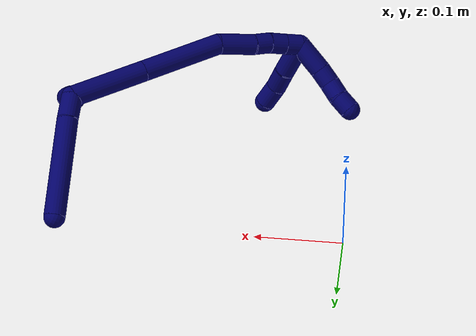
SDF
<sdf version="1.7">
 <world name="default">
  <model name="7">
   <static>0</static>
   <link name="7">
    <collision name="collision-cylinder-e_1_2_8">
     <pose>0.010526 0.010833 -0.000975 -1.66057 0.768999 -0.833534</pose>
     <geometry><cylinder><radius>0.0125</radius><length>0.030271</length></cylinder></geometry>
     <surface>
      <friction><ode><mu>1.16</mu><mu2>1.16</mu2><slip1>0</slip1><slip2>0</slip2></ode></friction>
      <contact><ode><kp>1e+06</kp><kd>1</kd><max_vel>0</max_vel><min_depth>0.001</min_depth></ode></contact>
     </surface>
    </collision>
    <visual name="visual-cylinder-e_1_2_8">
     <pose>0.010526 0.010833 -0.000975 -1.66057 0.768999 -0.833534</pose>
     <geometry><cylinder><radius>0.0125</radius><length>0.030271</length></cylinder></geometry>
     <material><ambient>0.003922 0 0.403922 1</ambient></material>
    </visual>
    <collision name="collision-cylinder-e_2_8_6">
     <pose>0.06527 0.061019 -0.010878 -1.79387 0.831075 -1.00957</pose>
     <geometry><cylinder><radius>0.0125</radius><length>0.119729</length></cylinder></geometry>
     <surface>
      <friction><ode><mu>1.16</mu><mu2>1.16</mu2><slip1>0</slip1><slip2>0</slip2></ode></friction>
      <contact><ode><kp>1e+06</kp><kd>1</kd><max_vel>0</max_vel><min_depth>0.001</min_depth></ode></contact>
     </surface>
    </collision>
    <visual name="visual-cylinder-e_2_8_6">
     <pose>0.06527 0.061019 -0.010878 -1.79387 0.831075 -1.00957</pose>
     <geometry><cylinder><radius>0.0125</radius><length>0.119729</length></cylinder></geometry>
     <material><ambient>0.003922 0 0.403922 1</ambient></material>
    </visual>
    <collision name="collision-cylinder-e_1_2_9">
     <pose>0.003189 -0.00903 -0.00288 1.87951 0.324517 0.440774</pose>
     <geometry><cylinder><radius>0.0125</radius><length>0.02</length></cylinder></geometry>
     <surface>
      <friction><ode><mu>1.16</mu><mu2>1.16</mu2><slip1>0</slip1><slip2>0</slip2></ode></friction>
      <contact><ode><kp>1e+06</kp><kd>1</kd><max_vel>0</max_vel><min_depth>0.001</min_depth></ode></contact>
     </surface>
    </collision>
    <visual name="visual-cylinder-e_1_2_9">
     <pose>0.003189 -0.00903 -0.00288 1.87951 0.324517 0.440774</pose>
     <geometry><cylinder><radius>0.0125</radius><length>0.02</length></cylinder></geometry>
     <material><ambient>0.003922 0 0.403922 1</ambient></material>
    </visual>
    <collision name="collision-cylinder-e_2_9_10">
     <pose>0.009032 -0.026985 -0.009406 1.95871 0.26868 0.397154</pose>
     <geometry><cylinder><radius>0.0125</radius><length>0.02</length></cylinder></geometry>
     <surface>
      <friction><ode><mu>1.16</mu><mu2>1.16</mu2><slip1>0</slip1><slip2>0</slip2></ode></friction>
      <contact><ode><kp>1e+06</kp><kd>1</kd><max_vel>0</max_vel><min_depth>0.001</min_depth></ode></contact>
     </surface>
    </collision>
    <visual name="visual-cylinder-e_2_9_10">
     <pose>0.009032 -0.026985 -0.009406 1.95871 0.26868 0.397154</pose>
     <geometry><cylinder><radius>0.0125</radius><length>0.02</length></cylinder></geometry>
     <material><ambient>0.003922 0 0.403922 1</ambient></material>
    </visual>
    <collision name="collision-cylinder-e_3_10_11">
     <pose>0.013692 -0.045421 -0.015399 1.8126 0.201951 0.257261</pose>
     <geometry><cylinder><radius>0.0125</radius><length>0.02</length></cylinder></geometry>
     <surface>
      <friction><ode><mu>1.16</mu><mu2>1.16</mu2><slip1>0</slip1><slip2>0</slip2></ode></friction>
      <contact><ode><kp>1e+06</kp><kd>1</kd><max_vel>0</max_vel><min_depth>0.001</min_depth></ode></contact>
     </surface>
    </collision>
    <visual name="visual-cylinder-e_3_10_11">
     <pose>0.013692 -0.045421 -0.015399 1.8126 0.201951 0.257261</pose>
     <geometry><cylinder><radius>0.0125</radius><length>0.02</length></cylinder></geometry>
     <material><ambient>0.003922 0 0.403922 1</ambient></material>
    </visual>
    <collision name="collision-cylinder-e_4_11_12">
     <pose>0.018188 -0.064615 -0.017979 1.5949 0.251654 0.257727</pose>
     <geometry><cylinder><radius>0.0125</radius><length>0.02</length></cylinder></geometry>
     <surface>
      <friction><ode><mu>1.16</mu><mu2>1.16</mu2><slip1>0</slip1><slip2>0</slip2></ode></friction>
      <contact><ode><kp>1e+06</kp><kd>1</kd><max_vel>0</max_vel><min_depth>0.001</min_depth></ode></contact>
     </surface>
    </collision>
    <visual name="visual-cylinder-e_4_11_12">
     <pose>0.018188 -0.064615 -0.017979 1.5949 0.251654 0.257727</pose>
     <geometry><cylinder><radius>0.0125</radius><length>0.02</length></cylinder></geometry>
     <material><ambient>0.003922 0 0.403922 1</ambient></material>
    </visual>
    <collision name="collision-cylinder-e_5_12_5">
     <pose>0.025305 -0.083156 -0.018559 1.60999 0.481026 0.499482</pose>
     <geometry><cylinder><radius>0.0125</radius><length>0.02</length></cylinder></geometry>
     <surface>
      <friction><ode><mu>1.16</mu><mu2>1.16</mu2><slip1>0</slip1><slip2>0</slip2></ode></friction>
      <contact><ode><kp>1e+06</kp><kd>1</kd><max_vel>0</max_vel><min_depth>0.001</min_depth></ode></contact>
     </surface>
    </collision>
    <visual name="visual-cylinder-e_5_12_5">
     <pose>0.025305 -0.083156 -0.018559 1.60999 0.481026 0.499482</pose>
     <geometry><cylinder><radius>0.0125</radius><length>0.02</length></cylinder></geometry>
     <material><ambient>0.003922 0 0.403922 1</ambient></material>
    </visual>
    <collision name="collision-cylinder-e_1_2_13">
     <pose>-0.027234 -0.014138 -0.03481 2.75581 -0.627223 -2.05743</pose>
     <geometry><cylinder><radius>0.0125</radius><length>0.092807</length></cylinder></geometry>
     <surface>
      <friction><ode><mu>1.16</mu><mu2>1.16</mu2><slip1>0</slip1><slip2>0</slip2></ode></friction>
      <contact><ode><kp>1e+06</kp><kd>1</kd><max_vel>0</max_vel><min_depth>0.001</min_depth></ode></contact>
     </surface>
    </collision>
    <visual name="visual-cylinder-e_1_2_13">
     <pose>-0.027234 -0.014138 -0.03481 2.75581 -0.627223 -2.05743</pose>
     <geometry><cylinder><radius>0.0125</radius><length>0.092807</length></cylinder></geometry>
     <material><ambient>0.003922 0 0.403922 1</ambient></material>
    </visual>
    <collision name="collision-cylinder-e_2_13_14">
     <pose>-0.084612 -0.043175 -0.107476 2.76662 -0.637671 -2.09835</pose>
     <geometry><cylinder><radius>0.0125</radius><length>0.101267</length></cylinder></geometry>
     <surface>
      <friction><ode><mu>1.16</mu><mu2>1.16</mu2><slip1>0</slip1><slip2>0</slip2></ode></friction>
      <contact><ode><kp>1e+06</kp><kd>1</kd><max_vel>0</max_vel><min_depth>0.001</min_depth></ode></contact>
     </surface>
    </collision>
    <visual name="visual-cylinder-e_2_13_14">
     <pose>-0.084612 -0.043175 -0.107476 2.76662 -0.637671 -2.09835</pose>
     <geometry><cylinder><radius>0.0125</radius><length>0.101267</length></cylinder></geometry>
     <material><ambient>0.003922 0 0.403922 1</ambient></material>
    </visual>
    <collision name="collision-cylinder-e_3_14_15">
     <pose>-0.122449 -0.061589 -0.166128 2.97418 -0.349789 -2.25498</pose>
     <geometry><cylinder><radius>0.0125</radius><length>0.0449</length></cylinder></geometry>
     <surface>
      <friction><ode><mu>1.16</mu><mu2>1.16</mu2><slip1>0</slip1><slip2>0</slip2></ode></friction>
      <contact><ode><kp>1e+06</kp><kd>1</kd><max_vel>0</max_vel><min_depth>0.001</min_depth></ode></contact>
     </surface>
    </collision>
    <visual name="visual-cylinder-e_3_14_15">
     <pose>-0.122449 -0.061589 -0.166128 2.97418 -0.349789 -2.25498</pose>
     <geometry><cylinder><radius>0.0125</radius><length>0.0449</length></cylinder></geometry>
     <material><ambient>0.003922 0 0.403922 1</ambient></material>
    </visual>
    <collision name="collision-cylinder-e_4_15_16">
     <pose>-0.13435 -0.067811 -0.195919 2.8492 -0.421113 -1.93503</pose>
     <geometry><cylinder><radius>0.0125</radius><length>0.020587</length></cylinder></geometry>
     <surface>
      <friction><ode><mu>1.16</mu><mu2>1.16</mu2><slip1>0</slip1><slip2>0</slip2></ode></friction>
      <contact><ode><kp>1e+06</kp><kd>1</kd><max_vel>0</max_vel><min_depth>0.001</min_depth></ode></contact>
     </surface>
    </collision>
    <visual name="visual-cylinder-e_4_15_16">
     <pose>-0.13435 -0.067811 -0.195919 2.8492 -0.421113 -1.93503</pose>
     <geometry><cylinder><radius>0.0125</radius><length>0.020587</length></cylinder></geometry>
     <material><ambient>0.003922 0 0.403922 1</ambient></material>
    </visual>
    <collision name="collision-cylinder-e_5_16_17">
     <pose>-0.141457 -0.072243 -0.2145 2.96363 -0.289327 -2.04261</pose>
     <geometry><cylinder><radius>0.0125</radius><length>0.020324</length></cylinder></geometry>
     <surface>
      <friction><ode><mu>1.16</mu><mu2>1.16</mu2><slip1>0</slip1><slip2>0</slip2></ode></friction>
      <contact><ode><kp>1e+06</kp><kd>1</kd><max_vel>0</max_vel><min_depth>0.001</min_depth></ode></contact>
     </surface>
    </collision>
    <visual name="visual-cylinder-e_5_16_17">
     <pose>-0.141457 -0.072243 -0.2145 2.96363 -0.289327 -2.04261</pose>
     <geometry><cylinder><radius>0.0125</radius><length>0.020324</length></cylinder></geometry>
     <material><ambient>0.003922 0 0.403922 1</ambient></material>
    </visual>
    <collision name="collision-cylinder-e_6_17_1">
     <pose>-0.14742 -0.075529 -0.233537 2.97781 -0.309578 -2.17314</pose>
     <geometry><cylinder><radius>0.0125</radius><length>0.020116</length></cylinder></geometry>
     <surface>
      <friction><ode><mu>1.16</mu><mu2>1.16</mu2><slip1>0</slip1><slip2>0</slip2></ode></friction>
      <contact><ode><kp>1e+06</kp><kd>1</kd><max_vel>0</max_vel><min_depth>0.001</min_depth></ode></contact>
     </surface>
    </collision>
    <visual name="visual-cylinder-e_6_17_1">
     <pose>-0.14742 -0.075529 -0.233537 2.97781 -0.309578 -2.17314</pose>
     <geometry><cylinder><radius>0.0125</radius><length>0.020116</length></cylinder></geometry>
     <material><ambient>0.003922 0 0.403922 1</ambient></material>
    </visual>
    <collision name="collision-cylinder-e_1_1_18">
     <pose>-0.130248 -0.085257 -0.245291 1.84556 1.17382 1.44161</pose>
     <geometry><cylinder><radius>0.0125</radius><length>0.043885</length></cylinder></geometry>
     <surface>
      <friction><ode><mu>1.16</mu><mu2>1.16</mu2><slip1>0</slip1><slip2>0</slip2></ode></friction>
      <contact><ode><kp>1e+06</kp><kd>1</kd><max_vel>0</max_vel><min_depth>0.001</min_depth></ode></contact>
     </surface>
    </collision>
    <visual name="visual-cylinder-e_1_1_18">
     <pose>-0.130248 -0.085257 -0.245291 1.84556 1.17382 1.44161</pose>
     <geometry><cylinder><radius>0.0125</radius><length>0.043885</length></cylinder></geometry>
     <material><ambient>0.003922 0 0.403922 1</ambient></material>
    </visual>
    <collision name="collision-cylinder-e_2_18_19">
     <pose>-0.097331 -0.099916 -0.249943 1.91806 1.07214 1.40531</pose>
     <geometry><cylinder><radius>0.0125</radius><length>0.028878</length></cylinder></geometry>
     <surface>
      <friction><ode><mu>1.16</mu><mu2>1.16</mu2><slip1>0</slip1><slip2>0</slip2></ode></friction>
      <contact><ode><kp>1e+06</kp><kd>1</kd><max_vel>0</max_vel><min_depth>0.001</min_depth></ode></contact>
     </surface>
    </collision>
    <visual name="visual-cylinder-e_2_18_19">
     <pose>-0.097331 -0.099916 -0.249943 1.91806 1.07214 1.40531</pose>
     <geometry><cylinder><radius>0.0125</radius><length>0.028878</length></cylinder></geometry>
     <material><ambient>0.003922 0 0.403922 1</ambient></material>
    </visual>
    <collision name="collision-cylinder-e_3_19_4">
     <pose>-0.071735 -0.110724 -0.252131 1.53345 1.24816 1.21295</pose>
     <geometry><cylinder><radius>0.0125</radius><length>0.027237</length></cylinder></geometry>
     <surface>
      <friction><ode><mu>1.16</mu><mu2>1.16</mu2><slip1>0</slip1><slip2>0</slip2></ode></friction>
      <contact><ode><kp>1e+06</kp><kd>1</kd><max_vel>0</max_vel><min_depth>0.001</min_depth></ode></contact>
     </surface>
    </collision>
    <visual name="visual-cylinder-e_3_19_4">
     <pose>-0.071735 -0.110724 -0.252131 1.53345 1.24816 1.21295</pose>
     <geometry><cylinder><radius>0.0125</radius><length>0.027237</length></cylinder></geometry>
     <material><ambient>0.003922 0 0.403922 1</ambient></material>
    </visual>
    <collision name="collision-cylinder-e_1_1_20">
     <pose>-0.143293 -0.070088 -0.259462 -2.73958 0.381998 -1.51841</pose>
     <geometry><cylinder><radius>0.0125</radius><length>0.038581</length></cylinder></geometry>
     <surface>
      <friction><ode><mu>1.16</mu><mu2>1.16</mu2><slip1>0</slip1><slip2>0</slip2></ode></friction>
      <contact><ode><kp>1e+06</kp><kd>1</kd><max_vel>0</max_vel><min_depth>0.001</min_depth></ode></contact>
     </surface>
    </collision>
    <visual name="visual-cylinder-e_1_1_20">
     <pose>-0.143293 -0.070088 -0.259462 -2.73958 0.381998 -1.51841</pose>
     <geometry><cylinder><radius>0.0125</radius><length>0.038581</length></cylinder></geometry>
     <material><ambient>0.003922 0 0.403922 1</ambient></material>
    </visual>
    <collision name="collision-cylinder-e_2_20_21">
     <pose>-0.13171 -0.058518 -0.28422 -2.63795 0.434687 -1.41862</pose>
     <geometry><cylinder><radius>0.0125</radius><length>0.02086</length></cylinder></geometry>
     <surface>
      <friction><ode><mu>1.16</mu><mu2>1.16</mu2><slip1>0</slip1><slip2>0</slip2></ode></friction>
      <contact><ode><kp>1e+06</kp><kd>1</kd><max_vel>0</max_vel><min_depth>0.001</min_depth></ode></contact>
     </surface>
    </collision>
    <visual name="visual-cylinder-e_2_20_21">
     <pose>-0.13171 -0.058518 -0.28422 -2.63795 0.434687 -1.41862</pose>
     <geometry><cylinder><radius>0.0125</radius><length>0.02086</length></cylinder></geometry>
     <material><ambient>0.003922 0 0.403922 1</ambient></material>
    </visual>
    <collision name="collision-cylinder-e_3_21_22">
     <pose>-0.123454 -0.04726 -0.299032 -2.34362 0.391915 -0.880097</pose>
     <geometry><cylinder><radius>0.0125</radius><length>0.02023</length></cylinder></geometry>
     <surface>
      <friction><ode><mu>1.16</mu><mu2>1.16</mu2><slip1>0</slip1><slip2>0</slip2></ode></friction>
      <contact><ode><kp>1e+06</kp><kd>1</kd><max_vel>0</max_vel><min_depth>0.001</min_depth></ode></contact>
     </surface>
    </collision>
    <visual name="visual-cylinder-e_3_21_22">
     <pose>-0.123454 -0.04726 -0.299032 -2.34362 0.391915 -0.880097</pose>
     <geometry><cylinder><radius>0.0125</radius><length>0.02023</length></cylinder></geometry>
     <material><ambient>0.003922 0 0.403922 1</ambient></material>
    </visual>
    <collision name="collision-cylinder-e_4_22_3">
     <pose>-0.116544 -0.035243 -0.313663 -2.56033 0.304409 -0.947735</pose>
     <geometry><cylinder><radius>0.0125</radius><length>0.020329</length></cylinder></geometry>
     <surface>
      <friction><ode><mu>1.16</mu><mu2>1.16</mu2><slip1>0</slip1><slip2>0</slip2></ode></friction>
      <contact><ode><kp>1e+06</kp><kd>1</kd><max_vel>0</max_vel><min_depth>0.001</min_depth></ode></contact>
     </surface>
    </collision>
    <visual name="visual-cylinder-e_4_22_3">
     <pose>-0.116544 -0.035243 -0.313663 -2.56033 0.304409 -0.947735</pose>
     <geometry><cylinder><radius>0.0125</radius><length>0.020329</length></cylinder></geometry>
     <material><ambient>0.003922 0 0.403922 1</ambient></material>
    </visual>
    <collision name="collision-sphere-3">
     <pose>-0.113497 -0.029918 -0.321768 0 -0 0</pose>
     <geometry><sphere><radius>0.0125</radius></sphere></geometry>
     <surface>
      <friction><ode><mu>1.16</mu><mu2>1.16</mu2><slip1>0</slip1><slip2>0</slip2></ode></friction>
      <contact><ode><kp>1e+06</kp><kd>1</kd><max_vel>0</max_vel><min_depth>0.001</min_depth></ode></contact>
     </surface>
    </collision>
    <visual name="visual-sphere-3">
     <pose>-0.113497 -0.029918 -0.321768 0 -0 0</pose>
     <geometry><sphere><radius>0.0125</radius></sphere></geometry>
     <material><ambient>0.003922 0 0.403922 1</ambient></material>
    </visual>
    <collision name="collision-sphere-22">
     <pose>-0.119591 -0.040567 -0.305558 0 -0 0</pose>
     <geometry><sphere><radius>0.0125</radius></sphere></geometry>
     <surface>
      <friction><ode><mu>1.16</mu><mu2>1.16</mu2><slip1>0</slip1><slip2>0</slip2></ode></friction>
      <contact><ode><kp>1e+06</kp><kd>1</kd><max_vel>0</max_vel><min_depth>0.001</min_depth></ode></contact>
     </surface>
    </collision>
    <visual name="visual-sphere-22">
     <pose>-0.119591 -0.040567 -0.305558 0 -0 0</pose>
     <geometry><sphere><radius>0.0125</radius></sphere></geometry>
     <material><ambient>0.003922 0 0.403922 1</ambient></material>
    </visual>
    <collision name="collision-sphere-21">
     <pose>-0.127318 -0.053953 -0.292506 0 -0 0</pose>
     <geometry><sphere><radius>0.0125</radius></sphere></geometry>
     <surface>
      <friction><ode><mu>1.16</mu><mu2>1.16</mu2><slip1>0</slip1><slip2>0</slip2></ode></friction>
      <contact><ode><kp>1e+06</kp><kd>1</kd><max_vel>0</max_vel><min_depth>0.001</min_depth></ode></contact>
     </surface>
    </collision>
    <visual name="visual-sphere-21">
     <pose>-0.127318 -0.053953 -0.292506 0 -0 0</pose>
     <geometry><sphere><radius>0.0125</radius></sphere></geometry>
     <material><ambient>0.003922 0 0.403922 1</ambient></material>
    </visual>
    <collision name="collision-sphere-20">
     <pose>-0.136102 -0.063084 -0.275935 0 -0 0</pose>
     <geometry><sphere><radius>0.0125</radius></sphere></geometry>
     <surface>
      <friction><ode><mu>1.16</mu><mu2>1.16</mu2><slip1>0</slip1><slip2>0</slip2></ode></friction>
      <contact><ode><kp>1e+06</kp><kd>1</kd><max_vel>0</max_vel><min_depth>0.001</min_depth></ode></contact>
     </surface>
    </collision>
    <visual name="visual-sphere-20">
     <pose>-0.136102 -0.063084 -0.275935 0 -0 0</pose>
     <geometry><sphere><radius>0.0125</radius></sphere></geometry>
     <material><ambient>0.003922 0 0.403922 1</ambient></material>
    </visual>
    <collision name="collision-sphere-4">
     <pose>-0.058819 -0.115039 -0.25197 0 -0 0</pose>
     <geometry><sphere><radius>0.0125</radius></sphere></geometry>
     <surface>
      <friction><ode><mu>1.16</mu><mu2>1.16</mu2><slip1>0</slip1><slip2>0</slip2></ode></friction>
      <contact><ode><kp>1e+06</kp><kd>1</kd><max_vel>0</max_vel><min_depth>0.001</min_depth></ode></contact>
     </surface>
    </collision>
    <visual name="visual-sphere-4">
     <pose>-0.058819 -0.115039 -0.25197 0 -0 0</pose>
     <geometry><sphere><radius>0.0125</radius></sphere></geometry>
     <material><ambient>0.003922 0 0.403922 1</ambient></material>
    </visual>
    <collision name="collision-sphere-11">
     <pose>0.015698 -0.054933 -0.017745 0 -0 0</pose>
     <geometry><sphere><radius>0.0125</radius></sphere></geometry>
     <surface>
      <friction><ode><mu>1.16</mu><mu2>1.16</mu2><slip1>0</slip1><slip2>0</slip2></ode></friction>
      <contact><ode><kp>1e+06</kp><kd>1</kd><max_vel>0</max_vel><min_depth>0.001</min_depth></ode></contact>
     </surface>
    </collision>
    <visual name="visual-sphere-11">
     <pose>0.015698 -0.054933 -0.017745 0 -0 0</pose>
     <geometry><sphere><radius>0.0125</radius></sphere></geometry>
     <material><ambient>0.003922 0 0.403922 1</ambient></material>
    </visual>
    <collision name="collision-sphere-10">
     <pose>0.011686 -0.03591 -0.013053 0 -0 0</pose>
     <geometry><sphere><radius>0.0125</radius></sphere></geometry>
     <surface>
      <friction><ode><mu>1.16</mu><mu2>1.16</mu2><slip1>0</slip1><slip2>0</slip2></ode></friction>
      <contact><ode><kp>1e+06</kp><kd>1</kd><max_vel>0</max_vel><min_depth>0.001</min_depth></ode></contact>
     </surface>
    </collision>
    <visual name="visual-sphere-10">
     <pose>0.011686 -0.03591 -0.013053 0 -0 0</pose>
     <geometry><sphere><radius>0.0125</radius></sphere></geometry>
     <material><ambient>0.003922 0 0.403922 1</ambient></material>
    </visual>
    <collision name="collision-sphere-6">
     <pose>0.10949 0.100373 -0.019805 0 -0 0</pose>
     <geometry><sphere><radius>0.0125</radius></sphere></geometry>
     <surface>
      <friction><ode><mu>1.16</mu><mu2>1.16</mu2><slip1>0</slip1><slip2>0</slip2></ode></friction>
      <contact><ode><kp>1e+06</kp><kd>1</kd><max_vel>0</max_vel><min_depth>0.001</min_depth></ode></contact>
     </surface>
    </collision>
    <visual name="visual-sphere-6">
     <pose>0.10949 0.100373 -0.019805 0 -0 0</pose>
     <geometry><sphere><radius>0.0125</radius></sphere></geometry>
     <material><ambient>0.003922 0 0.403922 1</ambient></material>
    </visual>
    <collision name="collision-sphere-9">
     <pose>0.006377 -0.01806 -0.00576 0 -0 0</pose>
     <geometry><sphere><radius>0.0125</radius></sphere></geometry>
     <surface>
      <friction><ode><mu>1.16</mu><mu2>1.16</mu2><slip1>0</slip1><slip2>0</slip2></ode></friction>
      <contact><ode><kp>1e+06</kp><kd>1</kd><max_vel>0</max_vel><min_depth>0.001</min_depth></ode></contact>
     </surface>
    </collision>
    <visual name="visual-sphere-9">
     <pose>0.006377 -0.01806 -0.00576 0 -0 0</pose>
     <geometry><sphere><radius>0.0125</radius></sphere></geometry>
     <material><ambient>0.003922 0 0.403922 1</ambient></material>
    </visual>
    <collision name="collision-sphere-2">
     <geometry><sphere><radius>0.0125</radius></sphere></geometry>
     <surface>
      <friction><ode><mu>1.16</mu><mu2>1.16</mu2><slip1>0</slip1><slip2>0</slip2></ode></friction>
      <contact><ode><kp>1e+06</kp><kd>1</kd><max_vel>0</max_vel><min_depth>0.001</min_depth></ode></contact>
     </surface>
    </collision>
    <visual name="visual-sphere-2">
     <geometry><sphere><radius>0.0125</radius></sphere></geometry>
     <material><ambient>0.003922 0 0.403922 1</ambient></material>
    </visual>
    <collision name="collision-sphere-19">
     <pose>-0.084651 -0.106409 -0.252293 0 -0 0</pose>
     <geometry><sphere><radius>0.0125</radius></sphere></geometry>
     <surface>
      <friction><ode><mu>1.16</mu><mu2>1.16</mu2><slip1>0</slip1><slip2>0</slip2></ode></friction>
      <contact><ode><kp>1e+06</kp><kd>1</kd><max_vel>0</max_vel><min_depth>0.001</min_depth></ode></contact>
     </surface>
    </collision>
    <visual name="visual-sphere-19">
     <pose>-0.084651 -0.106409 -0.252293 0 -0 0</pose>
     <geometry><sphere><radius>0.0125</radius></sphere></geometry>
     <material><ambient>0.003922 0 0.403922 1</ambient></material>
    </visual>
    <collision name="collision-sphere-8">
     <pose>0.021051 0.021665 -0.00195 0 -0 0</pose>
     <geometry><sphere><radius>0.0125</radius></sphere></geometry>
     <surface>
      <friction><ode><mu>1.16</mu><mu2>1.16</mu2><slip1>0</slip1><slip2>0</slip2></ode></friction>
      <contact><ode><kp>1e+06</kp><kd>1</kd><max_vel>0</max_vel><min_depth>0.001</min_depth></ode></contact>
     </surface>
    </collision>
    <visual name="visual-sphere-8">
     <pose>0.021051 0.021665 -0.00195 0 -0 0</pose>
     <geometry><sphere><radius>0.0125</radius></sphere></geometry>
     <material><ambient>0.003922 0 0.403922 1</ambient></material>
    </visual>
    <collision name="collision-sphere-12">
     <pose>0.020678 -0.074298 -0.018212 0 -0 0</pose>
     <geometry><sphere><radius>0.0125</radius></sphere></geometry>
     <surface>
      <friction><ode><mu>1.16</mu><mu2>1.16</mu2><slip1>0</slip1><slip2>0</slip2></ode></friction>
      <contact><ode><kp>1e+06</kp><kd>1</kd><max_vel>0</max_vel><min_depth>0.001</min_depth></ode></contact>
     </surface>
    </collision>
    <visual name="visual-sphere-12">
     <pose>0.020678 -0.074298 -0.018212 0 -0 0</pose>
     <geometry><sphere><radius>0.0125</radius></sphere></geometry>
     <material><ambient>0.003922 0 0.403922 1</ambient></material>
    </visual>
    <collision name="collision-sphere-5">
     <pose>0.029932 -0.092014 -0.018907 0 -0 0</pose>
     <geometry><sphere><radius>0.0125</radius></sphere></geometry>
     <surface>
      <friction><ode><mu>1.16</mu><mu2>1.16</mu2><slip1>0</slip1><slip2>0</slip2></ode></friction>
      <contact><ode><kp>1e+06</kp><kd>1</kd><max_vel>0</max_vel><min_depth>0.001</min_depth></ode></contact>
     </surface>
    </collision>
    <visual name="visual-sphere-5">
     <pose>0.029932 -0.092014 -0.018907 0 -0 0</pose>
     <geometry><sphere><radius>0.0125</radius></sphere></geometry>
     <material><ambient>0.003922 0 0.403922 1</ambient></material>
    </visual>
    <collision name="collision-sphere-13">
     <pose>-0.054468 -0.028275 -0.069619 0 -0 0</pose>
     <geometry><sphere><radius>0.0125</radius></sphere></geometry>
     <surface>
      <friction><ode><mu>1.16</mu><mu2>1.16</mu2><slip1>0</slip1><slip2>0</slip2></ode></friction>
      <contact><ode><kp>1e+06</kp><kd>1</kd><max_vel>0</max_vel><min_depth>0.001</min_depth></ode></contact>
     </surface>
    </collision>
    <visual name="visual-sphere-13">
     <pose>-0.054468 -0.028275 -0.069619 0 -0 0</pose>
     <geometry><sphere><radius>0.0125</radius></sphere></geometry>
     <material><ambient>0.003922 0 0.403922 1</ambient></material>
    </visual>
    <collision name="collision-sphere-14">
     <pose>-0.114755 -0.058075 -0.145332 0 -0 0</pose>
     <geometry><sphere><radius>0.0125</radius></sphere></geometry>
     <surface>
      <friction><ode><mu>1.16</mu><mu2>1.16</mu2><slip1>0</slip1><slip2>0</slip2></ode></friction>
      <contact><ode><kp>1e+06</kp><kd>1</kd><max_vel>0</max_vel><min_depth>0.001</min_depth></ode></contact>
     </surface>
    </collision>
    <visual name="visual-sphere-14">
     <pose>-0.114755 -0.058075 -0.145332 0 -0 0</pose>
     <geometry><sphere><radius>0.0125</radius></sphere></geometry>
     <material><ambient>0.003922 0 0.403922 1</ambient></material>
    </visual>
    <collision name="collision-sphere-15">
     <pose>-0.130142 -0.065104 -0.186923 0 -0 0</pose>
     <geometry><sphere><radius>0.0125</radius></sphere></geometry>
     <surface>
      <friction><ode><mu>1.16</mu><mu2>1.16</mu2><slip1>0</slip1><slip2>0</slip2></ode></friction>
      <contact><ode><kp>1e+06</kp><kd>1</kd><max_vel>0</max_vel><min_depth>0.001</min_depth></ode></contact>
     </surface>
    </collision>
    <visual name="visual-sphere-15">
     <pose>-0.130142 -0.065104 -0.186923 0 -0 0</pose>
     <geometry><sphere><radius>0.0125</radius></sphere></geometry>
     <material><ambient>0.003922 0 0.403922 1</ambient></material>
    </visual>
    <collision name="collision-sphere-16">
     <pose>-0.138557 -0.070519 -0.204914 0 -0 0</pose>
     <geometry><sphere><radius>0.0125</radius></sphere></geometry>
     <surface>
      <friction><ode><mu>1.16</mu><mu2>1.16</mu2><slip1>0</slip1><slip2>0</slip2></ode></friction>
      <contact><ode><kp>1e+06</kp><kd>1</kd><max_vel>0</max_vel><min_depth>0.001</min_depth></ode></contact>
     </surface>
    </collision>
    <visual name="visual-sphere-16">
     <pose>-0.138557 -0.070519 -0.204914 0 -0 0</pose>
     <geometry><sphere><radius>0.0125</radius></sphere></geometry>
     <material><ambient>0.003922 0 0.403922 1</ambient></material>
    </visual>
    <collision name="collision-sphere-17">
     <pose>-0.144356 -0.073967 -0.224086 0 -0 0</pose>
     <geometry><sphere><radius>0.0125</radius></sphere></geometry>
     <surface>
      <friction><ode><mu>1.16</mu><mu2>1.16</mu2><slip1>0</slip1><slip2>0</slip2></ode></friction>
      <contact><ode><kp>1e+06</kp><kd>1</kd><max_vel>0</max_vel><min_depth>0.001</min_depth></ode></contact>
     </surface>
    </collision>
    <visual name="visual-sphere-17">
     <pose>-0.144356 -0.073967 -0.224086 0 -0 0</pose>
     <geometry><sphere><radius>0.0125</radius></sphere></geometry>
     <material><ambient>0.003922 0 0.403922 1</ambient></material>
    </visual>
    <collision name="collision-sphere-1">
     <pose>-0.150484 -0.077091 -0.242989 0 -0 0</pose>
     <geometry><sphere><radius>0.0125</radius></sphere></geometry>
     <surface>
      <friction><ode><mu>1.16</mu><mu2>1.16</mu2><slip1>0</slip1><slip2>0</slip2></ode></friction>
      <contact><ode><kp>1e+06</kp><kd>1</kd><max_vel>0</max_vel><min_depth>0.001</min_depth></ode></contact>
     </surface>
    </collision>
    <visual name="visual-sphere-1">
     <pose>-0.150484 -0.077091 -0.242989 0 -0 0</pose>
     <geometry><sphere><radius>0.0125</radius></sphere></geometry>
     <material><ambient>0.003922 0 0.403922 1</ambient></material>
    </visual>
    <collision name="collision-sphere-18">
     <pose>-0.110012 -0.093423 -0.247592 0 -0 0</pose>
     <geometry><sphere><radius>0.0125</radius></sphere></geometry>
     <surface>
      <friction><ode><mu>1.16</mu><mu2>1.16</mu2><slip1>0</slip1><slip2>0</slip2></ode></friction>
      <contact><ode><kp>1e+06</kp><kd>1</kd><max_vel>0</max_vel><min_depth>0.001</min_depth></ode></contact>
     </surface>
    </collision>
    <visual name="visual-sphere-18">
     <pose>-0.110012 -0.093423 -0.247592 0 -0 0</pose>
     <geometry><sphere><radius>0.0125</radius></sphere></geometry>
     <material><ambient>0.003922 0 0.403922 1</ambient></material>
    </visual>
    <inertial>
     <pose>-0.052402 -0.033365 -0.12066 0 -0 0</pose>
     <mass>0.75</mass>
     <inertia>
      <ixx>-0.000208</ixx>
      <ixy>0</ixy>
      <ixz>0</ixz>
      <iyy>-1.8e-05</iyy>
      <iyz>0</iyz>
      <izz>-0.000102</izz>
     </inertia>
    </inertial>
   </link>
   <pose>0.325377 -0.113498 0.100711 0.313974 1.04034 0.56909</pose>
  </model>
 </world>
</sdf>
